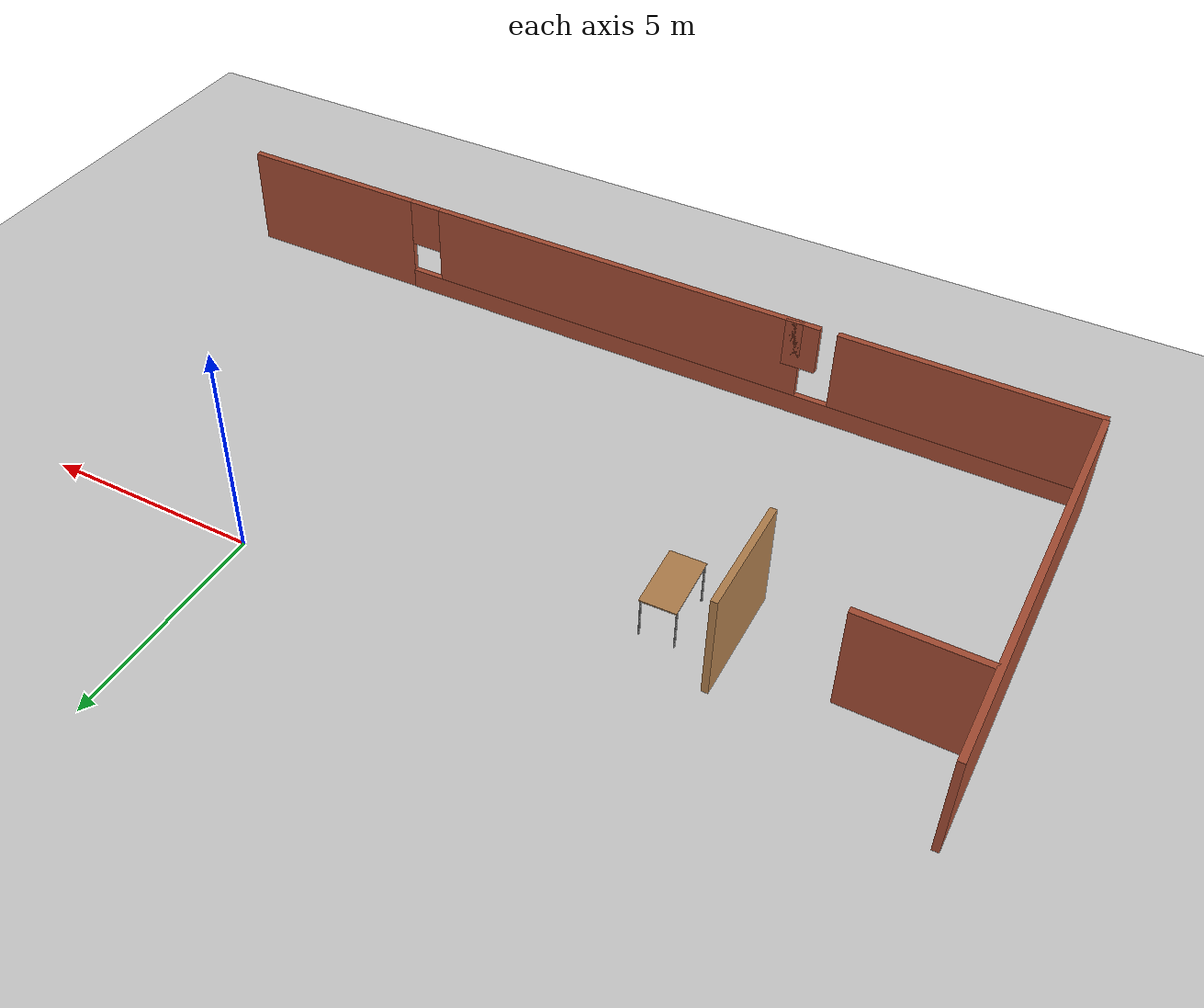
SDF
<sdf version="1.6">
 <world name="default">
  <model name="ground_plane">
   <static>1</static>
   <link name="link">
    <collision name="collision">
     <geometry><plane><normal>0 0 1</normal><size>100 100</size></plane></geometry>
     <surface>
      <contact><collide_bitmask>65535</collide_bitmask></contact>
      <friction><ode><mu>100</mu><mu2>50</mu2></ode></friction>
     </surface>
    </collision>
    <visual name="visual">
     <cast_shadows>0</cast_shadows>
     <geometry><plane><normal>0 0 1</normal><size>100 100</size></plane></geometry>
     <material>
      <script><uri>file://media/materials/scripts/gazebo.material</uri><name>Gazebo/Grey</name></script>
     </material>
    </visual>
   </link>
  </model>
  <model name="office">
   <link name="Wall_16">
    <pose>-0.257157 -8.66079 0 0 -0 3.14159</pose>
    <inertial>
     <inertia><ixx>0</ixx><ixy>0</ixy><ixz>0</ixz><iyy>0</iyy><iyz>0</iyz><izz>0</izz></inertia>
     <mass>0</mass>
    </inertial>
    <visual name="Wall_16_Visual_5">
     <pose>4.13509 0 1.9 0 -0 0</pose>
     <geometry><box><size>0.801337 0.15 1.2</size></box></geometry>
     <material>
      <script><uri>file://media/materials/scripts/gazebo.material</uri><name>Gazebo/Bricks</name></script>
      <ambient>0.435294 0.796078 0.67451 1</ambient>
      <shader type="pixel"/>
      <diffuse>1 1 1 1</diffuse>
      <specular>0.2 0.2 0.2 1</specular>
      <emissive>0 0 0 1</emissive>
     </material>
     <meta><layer>0</layer></meta>
    </visual>
    <visual name="Wall_16_Visual_0">
     <pose>-8.41899 0 1.25 0 -0 0</pose>
     <geometry><box><size>4.66983 0.15 2.5</size></box></geometry>
     <material>
      <script><uri>file://media/materials/scripts/gazebo.material</uri><name>Gazebo/Bricks</name></script>
      <ambient>0.435294 0.796078 0.67451 1</ambient>
      <shader type="pixel"/>
      <diffuse>1 1 1 1</diffuse>
      <specular>0.2 0.2 0.2 1</specular>
      <emissive>0 0 0 1</emissive>
     </material>
     <meta><layer>0</layer></meta>
    </visual>
    <visual name="Wall_16_Visual_3">
     <pose>7.84255 0 1.5 0 -0 0</pose>
     <geometry><box><size>5.82463 0.15 2</size></box></geometry>
     <material>
      <script><uri>file://media/materials/scripts/gazebo.material</uri><name>Gazebo/Bricks</name></script>
      <ambient>0.435294 0.796078 0.67451 1</ambient>
      <shader type="pixel"/>
      <diffuse>1 1 1 1</diffuse>
      <specular>0.2 0.2 0.2 1</specular>
      <emissive>0 0 0 1</emissive>
     </material>
     <meta><layer>0</layer></meta>
    </visual>
    <visual name="Wall_16_Visual_4">
     <pose>-5.68797 0 1.9 0 -0 0</pose>
     <geometry><box><size>0.801337 0.15 1.2</size></box></geometry>
     <material>
      <script><uri>file://media/materials/scripts/gazebo.material</uri><name>Gazebo/Bricks</name></script>
      <ambient>0.435294 0.796078 0.67451 1</ambient>
      <shader type="pixel"/>
      <diffuse>1 1 1 1</diffuse>
      <specular>0.2 0.2 0.2 1</specular>
      <emissive>0 0 0 1</emissive>
     </material>
     <meta><layer>0</layer></meta>
    </visual>
    <visual name="Wall_16_Visual_2">
     <pose>-0.576441 0 1.5 0 -0 0</pose>
     <geometry><box><size>9.43881 0.15 2</size></box></geometry>
     <material>
      <script><uri>file://media/materials/scripts/gazebo.material</uri><name>Gazebo/Bricks</name></script>
      <ambient>0.435294 0.796078 0.67451 1</ambient>
      <shader type="pixel"/>
      <diffuse>1 1 1 1</diffuse>
      <specular>0.2 0.2 0.2 1</specular>
      <emissive>0 0 0 1</emissive>
     </material>
     <meta><layer>0</layer></meta>
    </visual>
    <visual name="Wall_16_Visual_1">
     <pose>2.33101 0 0.25 0 -0 0</pose>
     <geometry><box><size>16.8662 0.15 0.5</size></box></geometry>
     <material>
      <script><uri>file://media/materials/scripts/gazebo.material</uri><name>Gazebo/Bricks</name></script>
      <ambient>0.435294 0.796078 0.67451 1</ambient>
      <shader type="pixel"/>
      <diffuse>1 1 1 1</diffuse>
      <specular>0.2 0.2 0.2 1</specular>
      <emissive>0 0 0 1</emissive>
     </material>
     <meta><layer>0</layer></meta>
    </visual>
    <collision name="Wall_16_Collision_0">
     <pose>-8.41899 0 1.25 0 -0 0</pose>
     <geometry><box><size>4.66983 0.15 2.5</size></box></geometry>
     <surface>
      <friction>
       <ode><mu>1</mu><mu2>1</mu2><fdir1>0 0 0</fdir1><slip1>0</slip1><slip2>0</slip2></ode>
       <torsional>
        <coefficient>1</coefficient>
        <patch_radius>0</patch_radius>
        <surface_radius>0</surface_radius>
        <use_patch_radius>1</use_patch_radius>
        <ode><slip>0</slip></ode>
       </torsional>
      </friction>
      <bounce><restitution_coefficient>0</restitution_coefficient><threshold>1e+06</threshold></bounce>
      <contact>
       <collide_without_contact>0</collide_without_contact>
       <collide_without_contact_bitmask>1</collide_without_contact_bitmask>
       <collide_bitmask>1</collide_bitmask>
       <ode>
        <soft_cfm>0</soft_cfm>
        <soft_erp>0.2</soft_erp>
        <kp>1e+13</kp>
        <kd>1</kd>
        <max_vel>0.01</max_vel>
        <min_depth>0</min_depth>
       </ode>
       <bullet>
        <split_impulse>1</split_impulse>
        <split_impulse_penetration_threshold>-0.01</split_impulse_penetration_threshold>
        <soft_cfm>0</soft_cfm>
        <soft_erp>0.2</soft_erp>
        <kp>1e+13</kp>
        <kd>1</kd>
       </bullet>
      </contact>
     </surface>
    </collision>
    <collision name="Wall_16_Collision_4">
     <pose>-5.68797 0 1.9 0 -0 0</pose>
     <geometry><box><size>0.801337 0.15 1.2</size></box></geometry>
     <surface>
      <friction>
       <ode><mu>1</mu><mu2>1</mu2><fdir1>0 0 0</fdir1><slip1>0</slip1><slip2>0</slip2></ode>
       <torsional>
        <coefficient>1</coefficient>
        <patch_radius>0</patch_radius>
        <surface_radius>0</surface_radius>
        <use_patch_radius>1</use_patch_radius>
        <ode><slip>0</slip></ode>
       </torsional>
      </friction>
      <bounce><restitution_coefficient>0</restitution_coefficient><threshold>1e+06</threshold></bounce>
      <contact>
       <collide_without_contact>0</collide_without_contact>
       <collide_without_contact_bitmask>1</collide_without_contact_bitmask>
       <collide_bitmask>1</collide_bitmask>
       <ode>
        <soft_cfm>0</soft_cfm>
        <soft_erp>0.2</soft_erp>
        <kp>1e+13</kp>
        <kd>1</kd>
        <max_vel>0.01</max_vel>
        <min_depth>0</min_depth>
       </ode>
       <bullet>
        <split_impulse>1</split_impulse>
        <split_impulse_penetration_threshold>-0.01</split_impulse_penetration_threshold>
        <soft_cfm>0</soft_cfm>
        <soft_erp>0.2</soft_erp>
        <kp>1e+13</kp>
        <kd>1</kd>
       </bullet>
      </contact>
     </surface>
    </collision>
    <collision name="Wall_16_Collision_2">
     <pose>-0.576441 0 1.5 0 -0 0</pose>
     <geometry><box><size>9.43881 0.15 2</size></box></geometry>
     <surface>
      <friction>
       <ode><mu>1</mu><mu2>1</mu2><fdir1>0 0 0</fdir1><slip1>0</slip1><slip2>0</slip2></ode>
       <torsional>
        <coefficient>1</coefficient>
        <patch_radius>0</patch_radius>
        <surface_radius>0</surface_radius>
        <use_patch_radius>1</use_patch_radius>
        <ode><slip>0</slip></ode>
       </torsional>
      </friction>
      <bounce><restitution_coefficient>0</restitution_coefficient><threshold>1e+06</threshold></bounce>
      <contact>
       <collide_without_contact>0</collide_without_contact>
       <collide_without_contact_bitmask>1</collide_without_contact_bitmask>
       <collide_bitmask>1</collide_bitmask>
       <ode>
        <soft_cfm>0</soft_cfm>
        <soft_erp>0.2</soft_erp>
        <kp>1e+13</kp>
        <kd>1</kd>
        <max_vel>0.01</max_vel>
        <min_depth>0</min_depth>
       </ode>
       <bullet>
        <split_impulse>1</split_impulse>
        <split_impulse_penetration_threshold>-0.01</split_impulse_penetration_threshold>
        <soft_cfm>0</soft_cfm>
        <soft_erp>0.2</soft_erp>
        <kp>1e+13</kp>
        <kd>1</kd>
       </bullet>
      </contact>
     </surface>
    </collision>
    <collision name="Wall_16_Collision_1">
     <pose>2.33101 0 0.25 0 -0 0</pose>
     <geometry><box><size>16.8662 0.15 0.5</size></box></geometry>
     <surface>
      <friction>
       <ode><mu>1</mu><mu2>1</mu2><fdir1>0 0 0</fdir1><slip1>0</slip1><slip2>0</slip2></ode>
       <torsional>
        <coefficient>1</coefficient>
        <patch_radius>0</patch_radius>
        <surface_radius>0</surface_radius>
        <use_patch_radius>1</use_patch_radius>
        <ode><slip>0</slip></ode>
       </torsional>
      </friction>
      <bounce><restitution_coefficient>0</restitution_coefficient><threshold>1e+06</threshold></bounce>
      <contact>
       <collide_without_contact>0</collide_without_contact>
       <collide_without_contact_bitmask>1</collide_without_contact_bitmask>
       <collide_bitmask>1</collide_bitmask>
       <ode>
        <soft_cfm>0</soft_cfm>
        <soft_erp>0.2</soft_erp>
        <kp>1e+13</kp>
        <kd>1</kd>
        <max_vel>0.01</max_vel>
        <min_depth>0</min_depth>
       </ode>
       <bullet>
        <split_impulse>1</split_impulse>
        <split_impulse_penetration_threshold>-0.01</split_impulse_penetration_threshold>
        <soft_cfm>0</soft_cfm>
        <soft_erp>0.2</soft_erp>
        <kp>1e+13</kp>
        <kd>1</kd>
       </bullet>
      </contact>
     </surface>
    </collision>
    <collision name="Wall_16_Collision_3">
     <pose>7.84255 0 1.5 0 -0 0</pose>
     <geometry><box><size>5.82463 0.15 2</size></box></geometry>
     <surface>
      <friction>
       <ode><mu>1</mu><mu2>1</mu2><fdir1>0 0 0</fdir1><slip1>0</slip1><slip2>0</slip2></ode>
       <torsional>
        <coefficient>1</coefficient>
        <patch_radius>0</patch_radius>
        <surface_radius>0</surface_radius>
        <use_patch_radius>1</use_patch_radius>
        <ode><slip>0</slip></ode>
       </torsional>
      </friction>
      <bounce><restitution_coefficient>0</restitution_coefficient><threshold>1e+06</threshold></bounce>
      <contact>
       <collide_without_contact>0</collide_without_contact>
       <collide_without_contact_bitmask>1</collide_without_contact_bitmask>
       <collide_bitmask>1</collide_bitmask>
       <ode>
        <soft_cfm>0</soft_cfm>
        <soft_erp>0.2</soft_erp>
        <kp>1e+13</kp>
        <kd>1</kd>
        <max_vel>0.01</max_vel>
        <min_depth>0</min_depth>
       </ode>
       <bullet>
        <split_impulse>1</split_impulse>
        <split_impulse_penetration_threshold>-0.01</split_impulse_penetration_threshold>
        <soft_cfm>0</soft_cfm>
        <soft_erp>0.2</soft_erp>
        <kp>1e+13</kp>
        <kd>1</kd>
       </bullet>
      </contact>
     </surface>
    </collision>
    <collision name="Wall_16_Collision_5">
     <pose>4.13509 0 1.9 0 -0 0</pose>
     <geometry><box><size>0.801337 0.15 1.2</size></box></geometry>
     <surface>
      <friction>
       <ode><mu>1</mu><mu2>1</mu2><fdir1>0 0 0</fdir1><slip1>0</slip1><slip2>0</slip2></ode>
       <torsional>
        <coefficient>1</coefficient>
        <patch_radius>0</patch_radius>
        <surface_radius>0</surface_radius>
        <use_patch_radius>1</use_patch_radius>
        <ode><slip>0</slip></ode>
       </torsional>
      </friction>
      <bounce><restitution_coefficient>0</restitution_coefficient><threshold>1e+06</threshold></bounce>
      <contact>
       <collide_without_contact>0</collide_without_contact>
       <collide_without_contact_bitmask>1</collide_without_contact_bitmask>
       <collide_bitmask>1</collide_bitmask>
       <ode>
        <soft_cfm>0</soft_cfm>
        <soft_erp>0.2</soft_erp>
        <kp>1e+13</kp>
        <kd>1</kd>
        <max_vel>0.01</max_vel>
        <min_depth>0</min_depth>
       </ode>
       <bullet>
        <split_impulse>1</split_impulse>
        <split_impulse_penetration_threshold>-0.01</split_impulse_penetration_threshold>
        <soft_cfm>0</soft_cfm>
        <soft_erp>0.2</soft_erp>
        <kp>1e+13</kp>
        <kd>1</kd>
       </bullet>
      </contact>
     </surface>
    </collision>
   </link>
   <link name="Wall_18">
    <pose>-10.0712 -1.17835 0 0 -0 3.14159</pose>
    <inertial>
     <inertia><ixx>0</ixx><ixy>0</ixy><ixz>0</ixz><iyy>0</iyy><iyz>0</iyz><izz>0</izz></inertia>
     <mass>0</mass>
    </inertial>
    <visual name="Wall_18_Visual_0">
     <pose>-0.488616 0 1.25 0 -0 0</pose>
     <geometry><box><size>2.70441 0.15 2.5</size></box></geometry>
     <material>
      <script><uri>file://media/materials/scripts/gazebo.material</uri><name>Gazebo/Bricks</name></script>
      <ambient>0.435 0.796 0.675 1</ambient>
      <shader type="pixel"><normal_map>__default__</normal_map></shader>
      <diffuse>1 1 1 1</diffuse>
      <specular>0.2 0.2 0.2 1</specular>
      <emissive>0 0 0 1</emissive>
     </material>
     <meta><layer>0</layer></meta>
    </visual>
    <collision name="Wall_18_Collision_0">
     <pose>-0.488616 0 1.25 0 -0 0</pose>
     <geometry><box><size>2.70441 0.15 2.5</size></box></geometry>
     <surface>
      <friction>
       <ode><mu>1</mu><mu2>1</mu2><fdir1>0 0 0</fdir1><slip1>0</slip1><slip2>0</slip2></ode>
       <torsional>
        <coefficient>1</coefficient>
        <patch_radius>0</patch_radius>
        <surface_radius>0</surface_radius>
        <use_patch_radius>1</use_patch_radius>
        <ode><slip>0</slip></ode>
       </torsional>
      </friction>
      <bounce><restitution_coefficient>0</restitution_coefficient><threshold>1e+06</threshold></bounce>
      <contact>
       <collide_without_contact>0</collide_without_contact>
       <collide_without_contact_bitmask>1</collide_without_contact_bitmask>
       <collide_bitmask>1</collide_bitmask>
       <ode>
        <soft_cfm>0</soft_cfm>
        <soft_erp>0.2</soft_erp>
        <kp>1e+13</kp>
        <kd>1</kd>
        <max_vel>0.01</max_vel>
        <min_depth>0</min_depth>
       </ode>
       <bullet>
        <split_impulse>1</split_impulse>
        <split_impulse_penetration_threshold>-0.01</split_impulse_penetration_threshold>
        <soft_cfm>0</soft_cfm>
        <soft_erp>0.2</soft_erp>
        <kp>1e+13</kp>
        <kd>1</kd>
       </bullet>
      </contact>
     </surface>
    </collision>
   </link>
   <link name="Wall_22">
    <pose>-6.06734 -1.53979 0 0 0 -1.5708</pose>
    <visual name="Wall_22_Visual">
     <pose>0 0 1.25 0 -0 0</pose>
     <geometry><box><size>2.75 0.15 2.5</size></box></geometry>
     <material>
      <script><uri>file://media/materials/scripts/gazebo.material</uri><name>Gazebo/Wood</name></script>
      <ambient>0.435294 0.796078 0.67451 1</ambient>
      <shader type="pixel"/>
      <diffuse>1 1 1 1</diffuse>
      <specular>0.2 0.2 0.2 1</specular>
      <emissive>0 0 0 1</emissive>
     </material>
     <meta><layer>0</layer></meta>
    </visual>
    <collision name="Wall_22_Collision">
     <pose>0 0 1.25 0 -0 0</pose>
     <geometry><box><size>2.75 0.15 2.5</size></box></geometry>
     <surface>
      <friction>
       <ode><mu>1</mu><mu2>1</mu2><fdir1>0 0 0</fdir1><slip1>0</slip1><slip2>0</slip2></ode>
       <torsional>
        <coefficient>1</coefficient>
        <patch_radius>0</patch_radius>
        <surface_radius>0</surface_radius>
        <use_patch_radius>1</use_patch_radius>
        <ode><slip>0</slip></ode>
       </torsional>
      </friction>
      <bounce><restitution_coefficient>0</restitution_coefficient><threshold>1e+06</threshold></bounce>
      <contact>
       <collide_without_contact>0</collide_without_contact>
       <collide_without_contact_bitmask>1</collide_without_contact_bitmask>
       <collide_bitmask>1</collide_bitmask>
       <ode>
        <soft_cfm>0</soft_cfm>
        <soft_erp>0.2</soft_erp>
        <kp>1e+13</kp>
        <kd>1</kd>
        <max_vel>0.01</max_vel>
        <min_depth>0</min_depth>
       </ode>
       <bullet>
        <split_impulse>1</split_impulse>
        <split_impulse_penetration_threshold>-0.01</split_impulse_penetration_threshold>
        <soft_cfm>0</soft_cfm>
        <soft_erp>0.2</soft_erp>
        <kp>1e+13</kp>
        <kd>1</kd>
       </bullet>
      </contact>
     </surface>
    </collision>
   </link>
   <link name="Wall_5_clone">
    <pose>-10.9673 -3.76778 0 0 -0 1.5708</pose>
    <inertial>
     <inertia><ixx>0</ixx><ixy>0</ixy><ixz>0</ixz><iyy>0</iyy><iyz>0</iyz><izz>0</izz></inertia>
     <mass>0</mass>
    </inertial>
    <visual name="Wall_5_Visual">
     <pose>0 0 1.25 0 -0 0</pose>
     <geometry><box><size>9.67537 0.15 2.5</size></box></geometry>
     <material>
      <script><uri>file://media/materials/scripts/gazebo.material</uri><name>Gazebo/Bricks</name></script>
      <ambient>0.435294 0.796078 0.67451 1</ambient>
      <shader type="pixel"/>
      <diffuse>1 1 1 1</diffuse>
      <specular>0.2 0.2 0.2 1</specular>
      <emissive>0 0 0 1</emissive>
     </material>
     <meta><layer>0</layer></meta>
    </visual>
    <collision name="Wall_5_Collision">
     <pose>0 0 1.25 0 -0 0</pose>
     <geometry><box><size>9.67537 0.15 2.5</size></box></geometry>
     <surface>
      <friction>
       <ode><mu>1</mu><mu2>1</mu2><fdir1>0 0 0</fdir1><slip1>0</slip1><slip2>0</slip2></ode>
       <torsional>
        <coefficient>1</coefficient>
        <patch_radius>0</patch_radius>
        <surface_radius>0</surface_radius>
        <use_patch_radius>1</use_patch_radius>
        <ode><slip>0</slip></ode>
       </torsional>
      </friction>
      <bounce><restitution_coefficient>0</restitution_coefficient><threshold>1e+06</threshold></bounce>
      <contact>
       <collide_without_contact>0</collide_without_contact>
       <collide_without_contact_bitmask>1</collide_without_contact_bitmask>
       <collide_bitmask>1</collide_bitmask>
       <ode>
        <soft_cfm>0</soft_cfm>
        <soft_erp>0.2</soft_erp>
        <kp>1e+13</kp>
        <kd>1</kd>
        <max_vel>0.01</max_vel>
        <min_depth>0</min_depth>
       </ode>
       <bullet>
        <split_impulse>1</split_impulse>
        <split_impulse_penetration_threshold>-0.01</split_impulse_penetration_threshold>
        <soft_cfm>0</soft_cfm>
        <soft_erp>0.2</soft_erp>
        <kp>1e+13</kp>
        <kd>1</kd>
       </bullet>
      </contact>
     </surface>
    </collision>
   </link>
   <static>1</static>
   <pose>-3.94455 -0.92637 0 0 -0 0</pose>
  </model>
  <model name="table_clone_clone">
   <static>1</static>
   <link name="link">
    <collision name="surface">
     <pose>0 0 1 0 -0 0</pose>
     <geometry><box><size>1.5 0.8 0.03</size></box></geometry>
     <surface><friction><ode><mu>0.6</mu><mu2>0.6</mu2></ode></friction></surface>
    </collision>
    <visual name="visual1">
     <pose>0 0 1 0 -0 0</pose>
     <geometry><box><size>1.5 0.8 0.03</size></box></geometry>
     <material>
      <script><uri>file://media/materials/scripts/gazebo.material</uri><name>Gazebo/Wood</name></script>
     </material>
    </visual>
    <collision name="front_left_leg">
     <pose>0.68 0.38 0.5 0 -0 0</pose>
     <geometry><cylinder><radius>0.02</radius><length>1</length></cylinder></geometry>
    </collision>
    <visual name="front_left_leg">
     <pose>0.68 0.38 0.5 0 -0 0</pose>
     <geometry><cylinder><radius>0.02</radius><length>1</length></cylinder></geometry>
     <material>
      <script><uri>file://media/materials/scripts/gazebo.material</uri><name>Gazebo/Grey</name></script>
     </material>
    </visual>
    <collision name="front_right_leg">
     <pose>0.68 -0.38 0.5 0 -0 0</pose>
     <geometry><cylinder><radius>0.02</radius><length>1</length></cylinder></geometry>
    </collision>
    <visual name="front_right_leg">
     <pose>0.68 -0.38 0.5 0 -0 0</pose>
     <geometry><cylinder><radius>0.02</radius><length>1</length></cylinder></geometry>
     <material>
      <script><uri>file://media/materials/scripts/gazebo.material</uri><name>Gazebo/Grey</name></script>
     </material>
    </visual>
    <collision name="back_right_leg">
     <pose>-0.68 -0.38 0.5 0 -0 0</pose>
     <geometry><cylinder><radius>0.02</radius><length>1</length></cylinder></geometry>
    </collision>
    <visual name="back_right_leg">
     <pose>-0.68 -0.38 0.5 0 -0 0</pose>
     <geometry><cylinder><radius>0.02</radius><length>1</length></cylinder></geometry>
     <material>
      <script><uri>file://media/materials/scripts/gazebo.material</uri><name>Gazebo/Grey</name></script>
     </material>
    </visual>
    <collision name="back_left_leg">
     <pose>-0.68 0.38 0.5 0 -0 0</pose>
     <geometry><cylinder><radius>0.02</radius><length>1</length></cylinder></geometry>
    </collision>
    <visual name="back_left_leg">
     <pose>-0.68 0.38 0.5 0 -0 0</pose>
     <geometry><cylinder><radius>0.02</radius><length>1</length></cylinder></geometry>
     <material>
      <script><uri>file://media/materials/scripts/gazebo.material</uri><name>Gazebo/Grey</name></script>
     </material>
    </visual>
   </link>
   <pose>-8.63215 -2.49719 0 0 -0 1.60401</pose>
  </model>
 </world>
</sdf>
